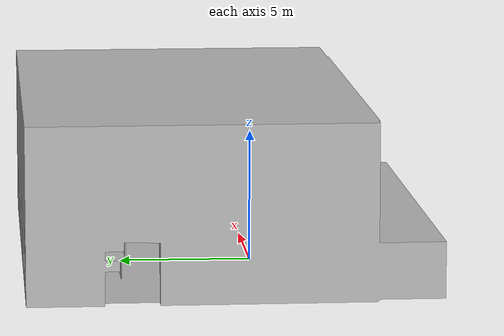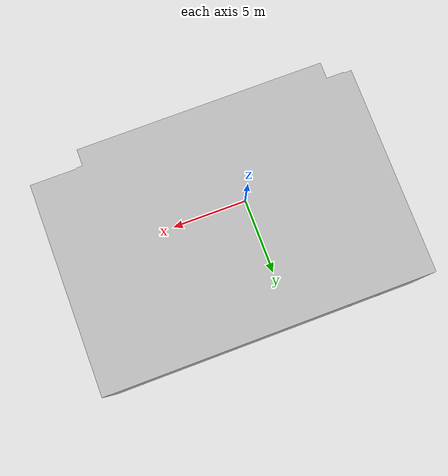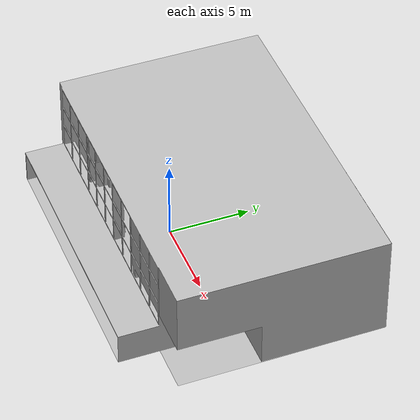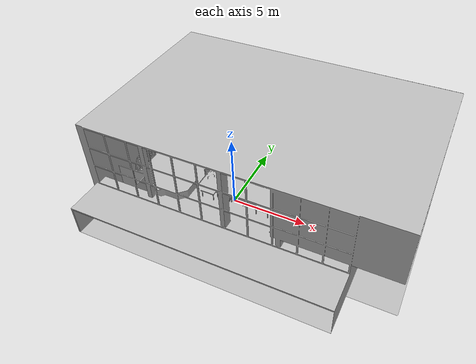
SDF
<?xml version="1.0" ?>
<sdf version="1.5">
  <model name="bauzil_room">
    <pose>0 0 0  0 0 0</pose>
    <static>true</static>
    <link name="body">
      <collision name="bauzil_collision">
        <geometry>
          <mesh><uri>model://bauzil_room/meshes/bauzil_room.stl</uri></mesh>
        </geometry>
      </collision>
      <visual name="bauzil_visual">
        <geometry>
          <mesh><uri>model://bauzil_room/meshes/bauzil_room.stl</uri></mesh>
        </geometry>
      </visual>
    </link>
    <link name="skin_estrade">
      <pose>-7 0 0.63 -0.15 0.025 1.55</pose>
      <collision name="skin_estrade_collision">
        <geometry>
          <mesh>
            <uri>model://bauzil_room_skins/meshes/airplane-skin.dae</uri>
           </mesh>
        </geometry>
      </collision>
      <visual name="skin_estrade_visual">
        <geometry>
          <mesh>
            <uri>model://bauzil_room_skins/meshes/airplane-skin.dae</uri>
           </mesh>
        </geometry>
      </visual>
    </link>
    <link name="skin_rap_side">
      <pose>6.3 -3.4 0.01 -0.4 0.03 3.14</pose>
      <collision name="skin_rap_collision">
        <geometry>
          <mesh>
            <uri>model://bauzil_room_skins/meshes/airplane-skin.dae</uri>
           </mesh>
        </geometry>
      </collision>
      <visual name="skin_rap_visual">
        <geometry>
          <mesh>
            <uri>model://bauzil_room_skins/meshes/airplane-skin.dae</uri>
           </mesh>
        </geometry>
      </visual>
    </link>
  </model>
</sdf>
